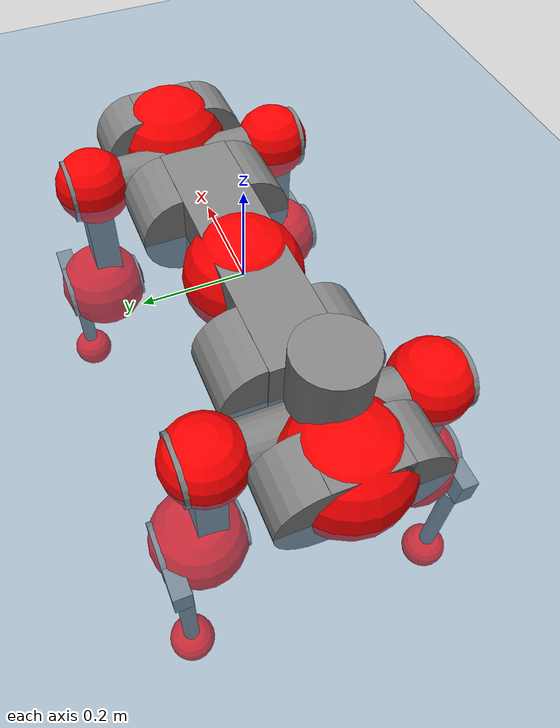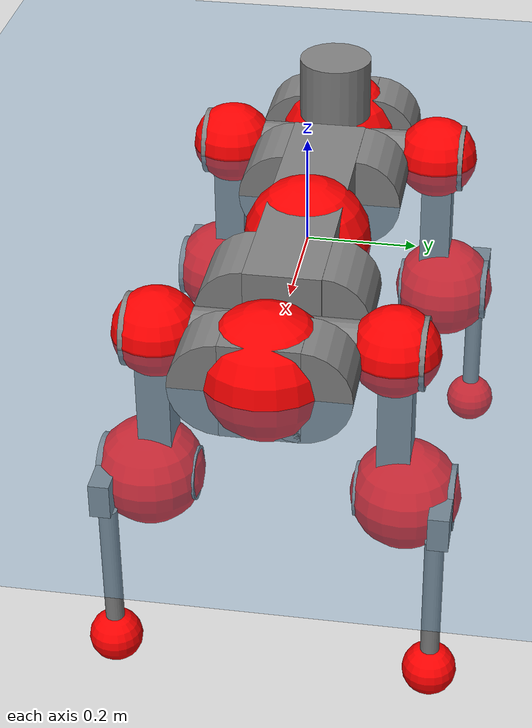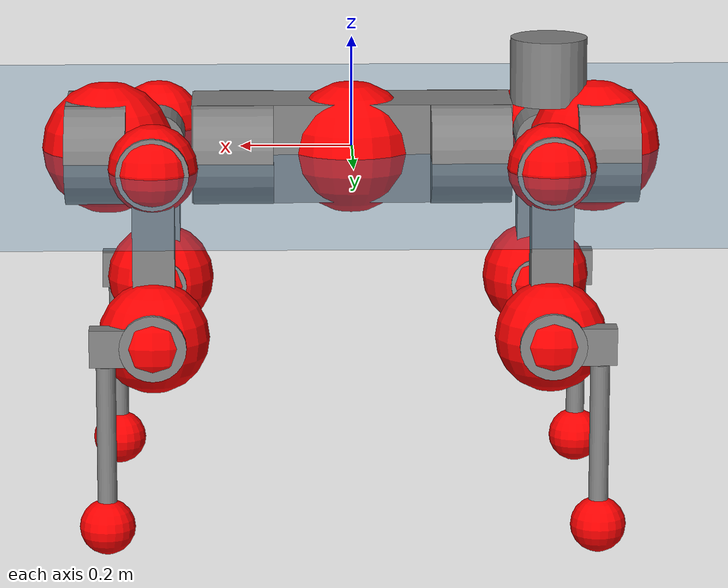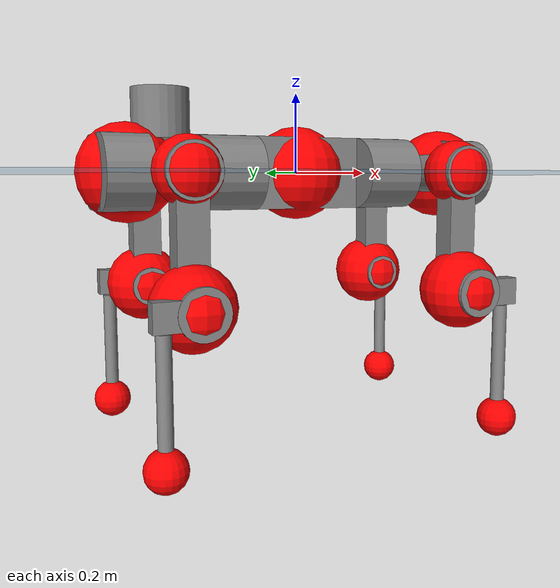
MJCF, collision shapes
<mujoco model="anymal_c">
  <compiler angle="radian" assetdir="assets" balanceinertia="true" inertiafromgeom="false"/>

  <option timestep="0.005" density="1.2" viscosity="2e-05"/>

  <size nkey="1"/>

  <visual>
    <quality shadowsize="8192"/>
    <map shadowclip="0.5"/>
  </visual>

  <default>
    <default class="/">
      <material specular="0" shininess="0.25"/>
      <geom contype="0" conaffinity="0" group="1" solref="-1000 -80"/>
      <site size="0.01 0.005 0.005" group="5"/>
      <general forcelimited="true" forcerange="-80 80" biastype="affine" gainprm="80" biasprm="0 -80 -2"/>
      <default class="anymal_c">
        <joint armature="0.01" damping="0.01" frictionloss="0.1"/>
        <default class="visual">
          <geom type="mesh" group="2"/>
          <default class="visual_zflip"/>
        </default>
        <default class="collision">
          <geom type="cylinder" group="3"/>
          <default class="foot">
            <geom size="0.03 0 0" type="sphere" condim="6" priority="1" friction="0.8 0.02 0.01" solimp="0.015 1 0.03"/>
          </default>
        </default>
      </default>
      <default class="reward_collision_sphere">
        <geom group="5" rgba="1 0 0 1"/>
      </default>
    </default>
  </default>

  <asset>
    <texture type="skybox" colorspace="auto" name="//unnamed_texture_0" builtin="gradient" rgb1="0.95 0.95 0.95" rgb2="0.95 0.95 0.95" width="100" height="600"/>
    <texture type="2d" colorspace="auto" name="texplane" builtin="checker" rgb1="0.345 0.575 0.748" rgb2="0.345 0.575 0.748" markrgb="1 1 1" width="512" height="512"/>
    <texture type="2d" colorspace="linear" name="base" file="base.png"/>
    <texture type="2d" colorspace="linear" name="top_shell" file="top_shell.png"/>
    <texture type="2d" colorspace="linear" name="bottom_shell" file="bottom_shell.png"/>
    <texture type="2d" colorspace="linear" name="remote" file="remote.png"/>
    <texture type="2d" colorspace="linear" name="hatch" file="hatch.png"/>
    <texture type="2d" colorspace="linear" name="handle" file="handle.png"/>
    <texture type="2d" colorspace="linear" name="face" file="face.png"/>
    <texture type="2d" colorspace="linear" name="battery" file="battery.png"/>
    <texture type="2d" colorspace="linear" name="lidar_cage" file="lidar_cage.png"/>
    <texture type="2d" colorspace="linear" name="depth_camera" file="depth_camera.png"/>
    <texture type="2d" colorspace="linear" name="wide_angle_camera" file="wide_angle_camera.png"/>
    <texture type="2d" colorspace="linear" name="lidar" file="lidar.png"/>
    <texture type="2d" colorspace="linear" name="drive" file="drive.png"/>
    <texture type="2d" colorspace="linear" name="hip_l" file="hip_l.png"/>
    <texture type="2d" colorspace="linear" name="shank_l" file="shank_l.png"/>
    <texture type="2d" colorspace="linear" name="foot" file="foot.png"/>
    <texture type="2d" colorspace="linear" name="thigh" file="thigh.png"/>
    <texture type="2d" colorspace="linear" name="shank_r" file="shank_r.png"/>
    <texture type="2d" colorspace="linear" name="hip_r" file="hip_r.png"/>
    <material name="MatPlane" class="/" texture="texplane" texuniform="true" texrepeat="2 2" specular="0.9" shininess="0.5"/>
    <material name="black_plastic" class="/" rgba="0.007 0.007 0.007 1"/>
    <material name="green" class="/" rgba="0.052 0.178 0.033 1"/>
    <material name="red" class="/" rgba="0.178 0.006 0.005 1"/>
    <material name="yellow" class="/" rgba="0.178 0.119 0.006 1"/>
    <material name="lwl" class="/" rgba="0.8 0.8 0.8 1"/>
    <material name="base" class="/" texture="base"/>
    <material name="top_shell" class="/" texture="top_shell"/>
    <material name="bottom_shell" class="/" texture="bottom_shell"/>
    <material name="hip_l" class="/" texture="hip_l"/>
    <material name="thigh" class="/" texture="thigh"/>
    <material name="shank_l" class="/" texture="shank_l"/>
    <material name="foot" class="/" texture="foot"/>
    <material name="hip_r" class="/" texture="hip_r"/>
    <material name="shank" class="/" texture="shank_r"/>
    <material name="hatch" class="/" texture="hatch"/>
    <material name="remote" class="/" texture="remote"/>
    <material name="handle" class="/" texture="handle"/>
    <material name="face" class="/" texture="face"/>
    <material name="depth_camera" class="/" texture="depth_camera"/>
    <material name="wide_angle_camera" class="/" texture="wide_angle_camera"/>
    <material name="battery" class="/" texture="battery"/>
    <material name="lidar_cage" class="/" texture="lidar_cage"/>
    <material name="lidar" class="/" texture="lidar"/>
    <material name="drive" class="/" texture="drive"/>
    <mesh name="base_0" class="/" file="base_0.obj"/>
    <mesh name="base_1" class="/" file="base_1.obj"/>
    <mesh name="base_2" class="/" file="base_2.obj"/>
    <mesh name="base_3" class="/" file="base_3.obj"/>
    <mesh name="base_4" class="/" file="base_4.obj"/>
    <mesh name="base_5" class="/" file="base_5.obj"/>
    <mesh name="top_shell" class="/" file="top_shell.obj"/>
    <mesh name="bottom_shell" class="/" file="bottom_shell.obj"/>
    <mesh name="remote" class="/" file="remote.obj"/>
    <mesh name="handle" class="/" file="handle.obj"/>
    <mesh name="face" class="/" file="face.obj"/>
    <mesh name="wide_angle_camera" class="/" file="wide_angle_camera.obj"/>
    <mesh name="depth_camera" class="/" file="depth_camera.obj"/>
    <mesh name="battery" class="/" file="battery.obj"/>
    <mesh name="lidar_cage" class="/" file="lidar_cage.obj"/>
    <mesh name="lidar" class="/" file="lidar.obj"/>
    <mesh name="drive" class="/" file="drive.obj"/>
    <mesh name="hip_l" class="/" file="hip_l.obj"/>
    <mesh name="thigh" class="/" file="thigh.obj"/>
    <mesh name="shank_l" class="/" file="shank_l.obj"/>
    <mesh name="foot" class="/" file="foot.obj"/>
    <mesh name="hip_r" class="/" file="hip_r.obj"/>
    <mesh name="hatch" class="/" file="hatch.obj"/>
    <mesh name="shank_r" class="/" file="shank_r.obj"/>
  </asset>

  <worldbody>
    <geom name="floor" class="/" size="100 100 0.125" type="plane" group="0" material="MatPlane"/>
    <light name="toplight_shadow" class="/" pos="0 0 5" dir="0.0990148 0.0990148 -0.990148" type="directional" ambient="0.04 0.04 0.04" diffuse="0.55 0.55 0.55" specular="0.12 0.12 0.12"/>
    <light name="toplight_fill" class="/" pos="0 0 5" dir="0.0990148 0.0990148 -0.990148" type="directional" castshadow="false" ambient="0.04 0.04 0.04" diffuse="0.3 0.3 0.3" specular="0.08 0.08 0.08"/>
    <body name="trunk" childclass="anymal_c" pos="0.000126265 -2.33229e-05 -0.000620048" quat="1 -5.67324e-05 -3.13676e-05 -0.000100032">
      <inertial pos="0.00200085 -0.000557113 0.0527792" quat="0.500013 0.500374 0.499749 0.499863" mass="18.7627" diaginertia="0.563462 0.47334 0.269508"/>
      <joint name="//unnamed_joint_0" type="free" armature="0" damping="0" frictionloss="0"/>
      <geom name="//unnamed_geom_1" class="visual" material="green" mesh="base_0"/>
      <geom name="//unnamed_geom_2" class="visual" material="yellow" mesh="base_1"/>
      <geom name="//unnamed_geom_3" class="visual" material="red" mesh="base_2"/>
      <geom name="//unnamed_geom_4" class="visual" material="black_plastic" mesh="base_3"/>
      <geom name="//unnamed_geom_5" class="visual" material="lwl" mesh="base_4"/>
      <geom name="//unnamed_geom_6" class="visual" material="base" mesh="base_5"/>
      <geom name="trunk_1" class="collision" size="0.286345 0.0691179 0.0888658" type="box"/>
      <geom name="trunk_2" class="collision" size="0.0888658 0.0715864" pos="0.21175 0.0662105 0" quat="0.707107 0 0.707107 0"/>
      <geom name="trunk_3" class="collision" size="0.0888658 0.0715864" pos="-0.21175 0.0662105 0" quat="0.707107 0 0.707107 0"/>
      <geom name="trunk_4" class="collision" size="0.0888658 0.0715864" pos="0.21175 -0.0662105 0" quat="0.707107 0 0.707107 0"/>
      <geom name="trunk_5" class="collision" size="0.0888658 0.0715864" pos="-0.21175 -0.0662105 0" quat="0.707107 0 0.707107 0"/>
      <geom name="//unnamed_geom_12" class="visual" material="top_shell" mesh="top_shell"/>
      <geom name="//unnamed_geom_13" class="visual" material="bottom_shell" mesh="bottom_shell"/>
      <geom name="//unnamed_geom_14" class="visual" material="remote" mesh="remote"/>
      <geom name="//unnamed_geom_15" class="visual" material="handle" mesh="handle"/>
      <geom name="//unnamed_geom_16" class="visual" pos="0.403541 0 0" quat="1 0 0 0" material="face" mesh="face"/>
      <geom name="trunk_6" class="collision" size="0.0543069 0.0691179 0.0888658" pos="0.457087 0 0" type="box"/>
      <geom name="//unnamed_geom_18" class="collision" size="0.0888658 0.0543069" pos="0.457087 0.0662105 0" quat="0.707107 0 0.707107 0"/>
      <geom name="//unnamed_geom_19" class="collision" size="0.0888658 0.0543069" pos="0.457087 -0.0662105 0" quat="0.707107 0 0.707107 0"/>
      <geom name="//unnamed_geom_20" class="visual" pos="0.449448 0 -0.0309748" quat="0.965926 0 0.258819 0" material="depth_camera" mesh="depth_camera"/>
      <geom name="//unnamed_geom_21" class="visual" pos="0.499437 0 0.0156102" material="wide_angle_camera" mesh="wide_angle_camera"/>
      <geom name="//unnamed_geom_22" class="visual_zflip" pos="-0.403541 0 0" quat="0 0 0 1" material="face" mesh="face"/>
      <geom name="trunk_7" class="collision" size="0.0543069 0.0691179 0.0888658" pos="-0.457087 0 0" quat="0 0 0 1" type="box"/>
      <geom name="//unnamed_geom_24" class="collision" size="0.0888658 0.0543069" pos="-0.457087 -0.0662105 0" quat="0 -0.707107 0 0.707107"/>
      <geom name="//unnamed_geom_25" class="collision" size="0.0888658 0.0543069" pos="-0.457087 0.0662105 0" quat="0 -0.707107 0 0.707107"/>
      <geom name="//unnamed_geom_26" class="visual" pos="-0.449448 0 -0.0309748" quat="0 -0.258819 0 0.965926" material="depth_camera" mesh="depth_camera"/>
      <geom name="//unnamed_geom_27" class="visual_zflip" pos="-0.499437 0 0.0156102" quat="0 0 0 1" material="wide_angle_camera" mesh="wide_angle_camera"/>
      <geom name="//unnamed_geom_28" class="visual" material="battery" mesh="battery"/>
      <geom name="//unnamed_geom_29" class="visual" pos="0 0.0719602 0.0297665" quat="0.683013 -0.183013 0.183013 0.683013" material="depth_camera" mesh="depth_camera"/>
      <geom name="//unnamed_geom_30" class="visual" pos="0 -0.0719602 0.0297665" quat="0.683013 0.183013 0.183013 -0.683013" material="depth_camera" mesh="depth_camera"/>
      <geom name="//unnamed_geom_31" class="visual" pos="-0.354376 0 0.0766435" quat="1 0 0 0" material="lidar_cage" mesh="lidar_cage"/>
      <geom name="trunk_8" class="collision" size="0.0691179 0.0592439" pos="-0.354376 0 0.13921"/>
      <geom name="//unnamed_geom_33" class="visual" pos="-0.354376 -1.08817e-05 0.148282" quat="0.707107 0 0 -0.707107" material="lidar" mesh="lidar"/>
      <geom name="//unnamed_geom_34" class="visual" pos="0.291971 0.0984043 -1.67162e-09" quat="0.258819 0.965926 0 0" material="drive" mesh="drive"/>
      <geom name="//unnamed_geom_35" class="visual" pos="0.291971 -0.0984043 1.67162e-09" quat="0.258819 -0.965926 0 0" material="drive" mesh="drive"/>
      <geom name="//unnamed_geom_36" class="visual" pos="-0.291971 0.0984043 1.67162e-09" quat="0 0 0.965926 -0.258819" material="drive" mesh="drive"/>
      <geom name="//unnamed_geom_37" class="visual" pos="-0.291971 -0.0984043 -1.67162e-09" quat="0 0 -0.965926 -0.258819" material="drive" mesh="drive"/>
      <geom name="//unnamed_geom_38" class="visual" pos="0.112933 0 0.0761221" quat="1 0 0 0" material="hatch" mesh="hatch"/>
      <geom name="//unnamed_geom_39" class="reward_collision_sphere" size="0.118488"/>
      <geom name="//unnamed_geom_40" class="reward_collision_sphere" size="0.118488" pos="0.438103 0 0"/>
      <geom name="//unnamed_geom_41" class="reward_collision_sphere" size="0.118488" pos="-0.438103 0 0"/>
      <site name="imu" pos="0.244621 0.00344477 0.0511562" size="0.00987398"/>
      <camera name="track" pos="0 -1.89173 0" quat="0.707107 0.707107 0 0" mode="trackcom"/>
      <camera name="ego_camera" pos="0.438103 0 -0.0417107" quat="-0.5 -0.5 0.5 0.5"/>
      <body name="LF_HIP" pos="0.29258 0.0981627 -0.000501314" quat="0.258767 0.96594 -7.78995e-05 0.000155053">
        <inertial pos="0.0551768 -0.0139876 -0.00912708" quat="-0.126576 0.70947 -0.137453 0.679513" mass="2.70395" diaginertia="0.00513195 0.00375227 0.00409856"/>
        <joint name="LF_HAA" pos="0 0 0" axis="0.999992 -0.00345754 0.00182277" range="-0.723424 0.473386" armature="0.00989404" damping="0.0139557" frictionloss="0.0947077"/>
        <geom name="//unnamed_geom_42" class="visual" pos="0 -9.83337e-05 1.61512e-05" quat="0.258819 -0.965926 0 0" material="hip_l" mesh="hip_l"/>
        <geom name="//unnamed_geom_43" class="visual" pos="0.0583163 -0.0703324 -0.0413232" quat="0.183013 -0.683013 0.683013 0.183013" material="drive" mesh="drive"/>
        <geom name="//unnamed_geom_44" class="collision" size="0.0493699 0.0691179" pos="0.0583163 -0.0113123 -0.00720032" quat="-0.353553 -0.612372 0.612372 -0.353553"/>
        <body name="LF_THIGH" pos="0.0592156 -0.0699902 -0.0439807" quat="0.182945 -0.683134 0.682909 0.183015">
          <inertial pos="0.0302286 0.000309895 -0.255876" quat="0.993227 -0.00502964 -0.0803134 0.0838186" mass="2.97911" diaginertia="0.0266714 0.0226726 0.0051998"/>
          <joint name="LF_HFE" pos="0 0 0" axis="0.999994 -0.00326236 0.000736053" stiffness="0.00286773" range="-3.12508 3.13941" armature="0.0102089" damping="0.00464034" frictionloss="0.0989924"/>
          <geom name="//unnamed_geom_45" class="visual" pos="0.000551074 8.68364e-07 0" quat="0.707107 0 0 -0.707107" material="thigh" mesh="thigh"/>
          <geom name="//unnamed_geom_46" class="collision" size="0.0641809 0.0394959" pos="0.0389425 0 0" quat="0.5 0.5 -0.5 -0.5"/>
          <geom name="//unnamed_geom_47" class="collision" size="0.0370274 0.0296219 0.139533" pos="0.0292068 0 -0.147358" quat="0.707107 0 0 -0.707107" type="box"/>
          <geom name="//unnamed_geom_48" class="visual" pos="0.0976482 0 -0.297189" quat="1 0 0 0" material="drive" mesh="drive"/>
          <geom name="//unnamed_geom_49" class="collision" size="0.0493699 0.0691179" pos="0.0294989 0 -0.297189" quat="0.707107 0 0.707107 0"/>
          <geom name="//unnamed_geom_50" class="reward_collision_sphere" size="0.0789918" pos="0.024339 0 0"/>
          <body name="LF_SHANK" pos="0.0979986 -0.000546334 -0.297305" quat="1 -4.61181e-06 -1.48921e-05 -7.83297e-06">
            <inertial pos="0.004253 -0.0582637 -0.0840727" quat="0.99308 -0.114682 -0.000689701 -0.025304" mass="0.56845" diaginertia="0.00888894 0.0069957 0.00138203"/>
            <joint name="LF_KFE" pos="0 0 0" axis="0.999996 0.00273115 0.00119261" range="-3.1595 3.12169" armature="0.0096499" damping="0.00736426" frictionloss="0.10249"/>
            <geom name="//unnamed_geom_51" class="visual" pos="0.000179693 0.000958134 0" quat="0.707107 0 0 -0.707107" material="shank_l" mesh="shank_l"/>
            <geom name="LF_kfe_act" class="collision" size="0.0592439 0.019748" pos="0.0194712 0 0" quat="0.5 0.5 -0.5 -0.5"/>
            <geom name="//unnamed_geom_53" class="collision" size="0.0567744 0.0333247 0.0187606" pos="0.0194712 -0.0543862 0" quat="0.5 0.5 -0.5 -0.5" type="box"/>
            <geom name="//unnamed_geom_54" class="visual" pos="0.0127049 -0.08288 -0.352425" quat="0.382683 0 0 -0.92388" material="foot" mesh="foot"/>
            <geom name="LF_calf" class="collision" size="0.0172795 0.139472" pos="0.012705 -0.0831887 -0.176212" quat="0.707107 0 0 -0.707107"/>
            <geom name="LF_foot" class="foot" size="0.0297516" pos="0.012705 -0.0831887 -0.328962" quat="0.707107 0 0 -0.707107"/>
            <geom name="//unnamed_geom_57" class="reward_collision_sphere" size="0.0987398" pos="-0.0486781 0 0"/>
            <geom name="//unnamed_geom_58" class="reward_collision_sphere" size="0.0493699" pos="0.012705 -0.0831887 -0.328962"/>
            <site name="LF_foot" class="foot" pos="0.012705 -0.0831887 -0.328962" quat="0.707107 0 0 -0.707107" size="0.00987398"/>
          </body>
        </body>
      </body>
      <body name="RF_HIP" pos="0.293177 -0.0987755 -0.000302629" quat="0.258847 -0.965918 -0.000362553 2.91402e-05">
        <inertial pos="0.0555799 0.0148159 -0.0088127" quat="0.138682 0.679077 0.127988 0.709395" mass="2.69522" diaginertia="0.00514321 0.00371291 0.00406159"/>
        <joint name="RF_HAA" pos="0 0 0" axis="0.999986 0.000663367 -0.00533037" range="-0.504816 0.736651" armature="0.0100699" damping="0.0144377" frictionloss="0.0943649"/>
        <geom name="//unnamed_geom_59" class="visual" pos="0 9.83329e-05 1.61512e-05" quat="0.258819 0.965926 0 0" material="hip_r" mesh="hip_r"/>
        <geom name="//unnamed_geom_60" class="visual" pos="0.0583163 0.0703324 -0.0413232" quat="0.183013 0.683013 0.683013 -0.183013" material="drive" mesh="drive"/>
        <geom name="//unnamed_geom_61" class="collision" size="0.0493699 0.0691179" pos="0.0583163 0.0113123 -0.00720032" quat="-0.353553 0.612372 0.612372 0.353553"/>
        <body name="RF_THIGH" pos="0.0587356 0.0695291 -0.0436298" quat="0.183081 0.682853 0.68322 -0.182767">
          <inertial pos="0.0307192 0.000142332 -0.25626" quat="0.992626 -0.00554114 -0.0809598 0.0900481" mass="2.92895" diaginertia="0.0263648 0.0227311 0.00511768"/>
          <joint name="RF_HFE" pos="0 0 0" axis="0.999999 -0.0015169 0.000594004" stiffness="0.00180347" range="-3.14154 3.15705" armature="0.0101537" damping="0.00147262" frictionloss="0.101426"/>
          <geom name="//unnamed_geom_62" class="visual" pos="0.000551074 8.68364e-07 0" quat="0.707107 0 0 -0.707107" material="thigh" mesh="thigh"/>
          <geom name="//unnamed_geom_63" class="collision" size="0.0641809 0.0394959" pos="0.0389425 0 0" quat="0.5 0.5 0.5 0.5"/>
          <geom name="//unnamed_geom_64" class="collision" size="0.0370274 0.0296219 0.139533" pos="0.0292068 0 -0.147358" quat="0.707107 0 0 0.707107" type="box"/>
          <geom name="//unnamed_geom_65" class="visual" pos="0.0976482 0 -0.297189" quat="1 0 0 0" material="drive" mesh="drive"/>
          <geom name="//unnamed_geom_66" class="collision" size="0.0493699 0.0691179" pos="0.0294989 0 -0.297189" quat="0.707107 0 0.707107 0"/>
          <geom name="//unnamed_geom_67" class="reward_collision_sphere" size="0.0789918" pos="0.024339 0 0"/>
          <body name="RF_SHANK" pos="0.0968853 0.000524526 -0.296888" quat="1 -9.13039e-05 -0.000118344 -0.000178166">
            <inertial pos="0.0050575 0.0578855 -0.0844677" quat="0.992854 0.115939 0.00237945 0.028181" mass="0.562762" diaginertia="0.0089062 0.00696985 0.00139269"/>
            <joint name="RF_KFE" pos="0 0 0" axis="0.999993 0.00380032 0.000135055" range="-3.13362 3.13422" armature="0.00989802" damping="0.0100013" frictionloss="0.102319"/>
            <geom name="//unnamed_geom_68" class="visual" pos="0.000179692 -0.000958132 0" quat="0.707107 0 0 0.707107" material="shank" mesh="shank_r"/>
            <geom name="RF_kfe_act" class="collision" size="0.0592439 0.019748" pos="0.0194712 0 0" quat="0.5 0.5 0.5 0.5"/>
            <geom name="//unnamed_geom_70" class="collision" size="0.0567744 0.0333247 0.0187606" pos="0.0194712 0.0543862 0" quat="0.5 0.5 0.5 0.5" type="box"/>
            <geom name="//unnamed_geom_71" class="visual" pos="0.012705 0.08288 -0.352425" quat="0.382683 0 0 0.92388" material="foot" mesh="foot"/>
            <geom name="RF_calf" class="collision" size="0.0172795 0.139472" pos="0.012705 0.0831887 -0.176212" quat="0.707107 0 0 0.707107"/>
            <geom name="RF_foot" class="foot" size="0.0296057" pos="0.012705 0.0831887 -0.328962" quat="0.707107 0 0 0.707107"/>
            <geom name="//unnamed_geom_74" class="reward_collision_sphere" size="0.0987398" pos="-0.0486781 0 0"/>
            <geom name="//unnamed_geom_75" class="reward_collision_sphere" size="0.0493699" pos="0.012705 0.0831887 -0.328962"/>
            <site name="RF_foot" class="foot" pos="0.012705 0.0831887 -0.328962" quat="0.707107 0 0 0.707107" size="0.00987398"/>
          </body>
        </body>
      </body>
      <body name="LH_HIP" pos="-0.291419 0.0991915 3.13187e-05" quat="0.000101951 4.85028e-05 0.965929 -0.258806">
        <inertial pos="0.0550972 0.0141099 -0.00941138" quat="0.134245 0.679559 0.129013 0.709601" mass="2.7073" diaginertia="0.0052264 0.0037493 0.00413336"/>
        <joint name="LH_HAA" pos="0 0 0" axis="0.999999 0.00130938 7.31102e-05" range="-0.492408 0.72702" armature="0.00972585" damping="0.00694591" frictionloss="0.0993754"/>
        <geom name="//unnamed_geom_76" class="visual" pos="0 9.83329e-05 1.61512e-05" quat="-0.258819 -0.965926 0 0" material="hip_r" mesh="hip_r"/>
        <geom name="//unnamed_geom_77" class="visual" pos="0.0583163 0.0703324 -0.0413232" quat="0.183013 0.683013 0.683013 -0.183013" material="drive" mesh="drive"/>
        <geom name="//unnamed_geom_78" class="collision" size="0.0493699 0.0691179" pos="0.0583163 0.0113123 -0.00720032" quat="-0.353553 0.612372 0.612372 0.353553"/>
        <body name="LH_THIGH" pos="0.0576267 0.0687652 -0.042808" quat="0.183018 0.682972 0.683005 -0.183189">
          <inertial pos="0.0309727 0.000632201 -0.256809" quat="0.992776 -0.00511066 -0.0805191 0.0888027" mass="3.00459" diaginertia="0.0268866 0.0230036 0.00517208"/>
          <joint name="LH_HFE" pos="0 0 0" axis="0.999993 -0.00232675 -0.00294391" range="-3.12428 3.13537" armature="0.00982209" damping="0.00262402" frictionloss="0.095842"/>
          <geom name="//unnamed_geom_79" class="visual" pos="0.000551074 8.68364e-07 0" quat="0.707107 0 0 -0.707107" material="thigh" mesh="thigh"/>
          <geom name="//unnamed_geom_80" class="collision" size="0.0641809 0.0394959" pos="0.0389425 0 0" quat="0.5 0.5 -0.5 -0.5"/>
          <geom name="//unnamed_geom_81" class="collision" size="0.0370274 0.0296219 0.139533" pos="0.0292068 0 -0.147358" quat="0.707107 0 0 -0.707107" type="box"/>
          <geom name="//unnamed_geom_82" class="visual" pos="0.0976482 0 -0.297189" quat="1 0 0 0" material="drive" mesh="drive"/>
          <geom name="//unnamed_geom_83" class="collision" size="0.0493699 0.0691179" pos="0.0294989 0 -0.297189" quat="0.707107 0 0.707107 0"/>
          <geom name="//unnamed_geom_84" class="reward_collision_sphere" size="0.0789918" pos="0.024339 0 0"/>
          <body name="LH_SHANK" pos="0.0983009 -0.000903182 -0.297585" quat="1 5.11435e-05 4.69708e-05 0.000103319">
            <inertial pos="0.00479629 0.0570143 -0.0849279" quat="0.992959 0.115643 -0.00114466 0.0256392" mass="0.569972" diaginertia="0.00898242 0.00713173 0.00138497"/>
            <joint name="LH_KFE" pos="0 0 0" axis="0.999999 0.000729306 -0.00118134" range="-3.1387 3.12028" armature="0.009874" damping="0.00229842" frictionloss="0.0994275"/>
            <geom name="//unnamed_geom_85" class="visual" pos="0.000179692 -0.000958132 0" quat="-0.707107 0 0 -0.707107" material="shank" mesh="shank_r"/>
            <geom name="LH_kfe_act" class="collision" size="0.0592439 0.019748" pos="0.0194712 0 0" quat="0.5 0.5 -0.5 -0.5"/>
            <geom name="//unnamed_geom_87" class="collision" size="0.0567744 0.0333247 0.0187606" pos="0.0194712 0.0543862 0" quat="0.5 0.5 -0.5 -0.5" type="box"/>
            <geom name="//unnamed_geom_88" class="visual" pos="0.012705 0.08288 -0.352425" quat="-0.382683 0 0 -0.92388" material="foot" mesh="foot"/>
            <geom name="LH_calf" class="collision" size="0.0172795 0.139472" pos="0.012705 0.0831887 -0.176212" quat="0.707107 0 0 -0.707107"/>
            <geom name="LH_foot" class="foot" size="0.030436" pos="0.012705 0.0831887 -0.328962" quat="0.707107 0 0 -0.707107"/>
            <geom name="//unnamed_geom_91" class="reward_collision_sphere" size="0.0987398" pos="-0.0486781 0 0"/>
            <geom name="//unnamed_geom_92" class="reward_collision_sphere" size="0.0493699" pos="0.012705 0.0831887 -0.328962"/>
            <site name="LH_foot" class="foot" pos="0.012705 0.0831887 -0.328962" quat="0.707107 0 0 -0.707107" size="0.00987398"/>
          </body>
        </body>
      </body>
      <body name="RH_HIP" pos="-0.290981 -0.0983658 -0.000103518" quat="9.83044e-05 -8.34956e-05 -0.965946 -0.258744">
        <inertial pos="0.0556426 -0.0136801 -0.00882755" quat="-0.128457 0.70984 -0.135723 0.679121" mass="2.66186" diaginertia="0.00518504 0.00375696 0.00404667"/>
        <joint name="RH_HAA" pos="0 0 0" axis="0.999978 0.00479999 0.00450051" range="-0.708307 0.491511" armature="0.0098726" damping="0.0108144" frictionloss="0.103372"/>
        <geom name="//unnamed_geom_93" class="visual" pos="0 -9.83337e-05 1.61512e-05" quat="-0.258819 0.965926 0 0" material="hip_l" mesh="hip_l"/>
        <geom name="//unnamed_geom_94" class="visual" pos="0.0583163 -0.0703324 -0.0413232" quat="-0.183013 0.683013 -0.683013 -0.183013" material="drive" mesh="drive"/>
        <geom name="//unnamed_geom_95" class="collision" size="0.0493699 0.0691179" pos="0.0583163 -0.0113123 -0.00720032" quat="0.353553 0.612372 -0.612372 0.353553"/>
        <body name="RH_THIGH" pos="0.0582423 -0.06868 -0.043389" quat="-0.183061 0.682828 -0.683205 -0.182933">
          <inertial pos="0.0296666 0.00082789 -0.255912" quat="0.993103 -0.00108311 -0.0800639 0.085644" mass="2.91968" diaginertia="0.0263374 0.0225377 0.00517979"/>
          <joint name="RH_HFE" pos="0 0 0" axis="0.999995 0.00068664 0.00300635" range="-3.13668 3.15596" armature="0.00991822" damping="0.0125751" frictionloss="0.0969613"/>
          <geom name="//unnamed_geom_96" class="visual" pos="0.000551074 8.68364e-07 0" quat="0.707107 0 0 -0.707107" material="thigh" mesh="thigh"/>
          <geom name="//unnamed_geom_97" class="collision" size="0.0641809 0.0394959" pos="0.0389425 0 0" quat="0.5 0.5 0.5 0.5"/>
          <geom name="//unnamed_geom_98" class="collision" size="0.0370274 0.0296219 0.139533" pos="0.0292068 0 -0.147358" quat="0.707107 0 0 0.707107" type="box"/>
          <geom name="//unnamed_geom_99" class="visual" pos="0.0976482 0 -0.297189" quat="1 0 0 0" material="drive" mesh="drive"/>
          <geom name="//unnamed_geom_100" class="collision" size="0.0493699 0.0691179" pos="0.0294989 0 -0.297189" quat="0.707107 0 0.707107 0"/>
          <geom name="//unnamed_geom_101" class="reward_collision_sphere" size="0.0789918" pos="0.024339 0 0"/>
          <body name="RH_SHANK" pos="0.0967552 -0.000369387 -0.296753" quat="1 0.000421323 -0.000120539 -0.000125436">
            <inertial pos="0.00538861 -0.0578185 -0.0841134" quat="0.992899 -0.116163 -0.00163734 -0.0255773" mass="0.556651" diaginertia="0.00874747 0.00684487 0.00135996"/>
            <joint name="RH_KFE" pos="0 0 0" axis="0.999964 0.0082837 -0.00158003" range="-3.12621 3.12735" armature="0.00993192" damping="0.00432876" frictionloss="0.0971554"/>
            <geom name="//unnamed_geom_102" class="visual" pos="0.000179693 0.000958134 0" quat="0.707107 0 0 -0.707107" material="shank_l" mesh="shank_l"/>
            <geom name="RH_kfe_act" class="collision" size="0.0592439 0.019748" pos="0.0194712 0 0" quat="0.5 0.5 0.5 0.5"/>
            <geom name="//unnamed_geom_104" class="collision" size="0.0567744 0.0333247 0.0187606" pos="0.0194712 -0.0543862 0" quat="0.5 0.5 0.5 0.5" type="box"/>
            <geom name="//unnamed_geom_105" class="visual" pos="0.0127049 -0.08288 -0.352425" quat="0.382683 0 0 -0.92388" material="foot" mesh="foot"/>
            <geom name="RH_calf" class="collision" size="0.0172795 0.139472" pos="0.012705 -0.0831887 -0.176212" quat="0.707107 0 0 0.707107"/>
            <geom name="RH_foot" class="foot" size="0.0287491" pos="0.012705 -0.0831887 -0.328962" quat="0.707107 0 0 0.707107"/>
            <geom name="//unnamed_geom_108" class="reward_collision_sphere" size="0.0987398" pos="-0.0486781 0 0"/>
            <geom name="//unnamed_geom_109" class="reward_collision_sphere" size="0.0493699" pos="0.012705 -0.0831887 -0.328962"/>
            <site name="RH_foot" class="foot" pos="0.012705 -0.0831887 -0.328962" quat="0.707107 0 0 0.707107" size="0.00987398"/>
          </body>
        </body>
      </body>
    </body>
  </worldbody>

  <contact>
    <pair class="/" geom1="floor" geom2="LF_foot" name="//unnamed_contact_0"/>
    <pair class="/" geom1="floor" geom2="RF_foot" name="//unnamed_contact_1"/>
    <pair class="/" geom1="floor" geom2="LH_foot" name="//unnamed_contact_2"/>
    <pair class="/" geom1="floor" geom2="RH_foot" name="//unnamed_contact_3"/>
  </contact>

  <actuator>
    <general name="LF_HAA" class="/" joint="LF_HAA" forcerange="-79.215 79.215" gainprm="80.067" biasprm="0 -80.067 -1.97211"/>
    <general name="LF_HFE" class="/" joint="LF_HFE" forcerange="-80.6156 80.6156" gainprm="80.067" biasprm="0 -80.067 -1.97211"/>
    <general name="LF_KFE" class="/" joint="LF_KFE" forcerange="-76.6189 76.6189" gainprm="80.067" biasprm="0 -80.067 -1.97211"/>
    <general name="RF_HAA" class="/" joint="RF_HAA" forcerange="-78.5921 78.5921" gainprm="80.067" biasprm="0 -80.067 -1.97211"/>
    <general name="RF_HFE" class="/" joint="RF_HFE" forcerange="-77.2728 77.2728" gainprm="80.067" biasprm="0 -80.067 -1.97211"/>
    <general name="RF_KFE" class="/" joint="RF_KFE" forcerange="-78.4846 78.4846" gainprm="80.067" biasprm="0 -80.067 -1.97211"/>
    <general name="LH_HAA" class="/" joint="LH_HAA" forcerange="-78.8429 78.8429" gainprm="80.067" biasprm="0 -80.067 -1.97211"/>
    <general name="LH_HFE" class="/" joint="LH_HFE" forcerange="-78.0215 78.0215" gainprm="80.067" biasprm="0 -80.067 -1.97211"/>
    <general name="LH_KFE" class="/" joint="LH_KFE" forcerange="-80.3239 80.3239" gainprm="80.067" biasprm="0 -80.067 -1.97211"/>
    <general name="RH_HAA" class="/" joint="RH_HAA" forcerange="-79.4098 79.4098" gainprm="80.067" biasprm="0 -80.067 -1.97211"/>
    <general name="RH_HFE" class="/" joint="RH_HFE" forcerange="-79.4041 79.4041" gainprm="80.067" biasprm="0 -80.067 -1.97211"/>
    <general name="RH_KFE" class="/" joint="RH_KFE" forcerange="-76.4441 76.4441" gainprm="80.067" biasprm="0 -80.067 -1.97211"/>
  </actuator>

  <sensor>
    <gyro site="imu" name="imu_angular_velocity"/>
    <velocimeter site="imu" name="imu_linear_velocity"/>
    <framelinvel objtype="site" objname="LF_foot" name="LF_foot_global_linear_velocity"/>
    <framelinvel objtype="site" objname="RF_foot" name="RF_foot_global_linear_velocity"/>
    <framelinvel objtype="site" objname="LH_foot" name="LH_foot_global_linear_velocity"/>
    <framelinvel objtype="site" objname="RH_foot" name="RH_foot_global_linear_velocity"/>
  </sensor>

  <keyframe>
    <key name="home" qpos="0 0 0.55 1 0 0 0 0 0.4 -0.8 0 -0.4 0.8 0 -0.4 0.8 0 0.4 -0.8"/>
  </keyframe>
</mujoco>
